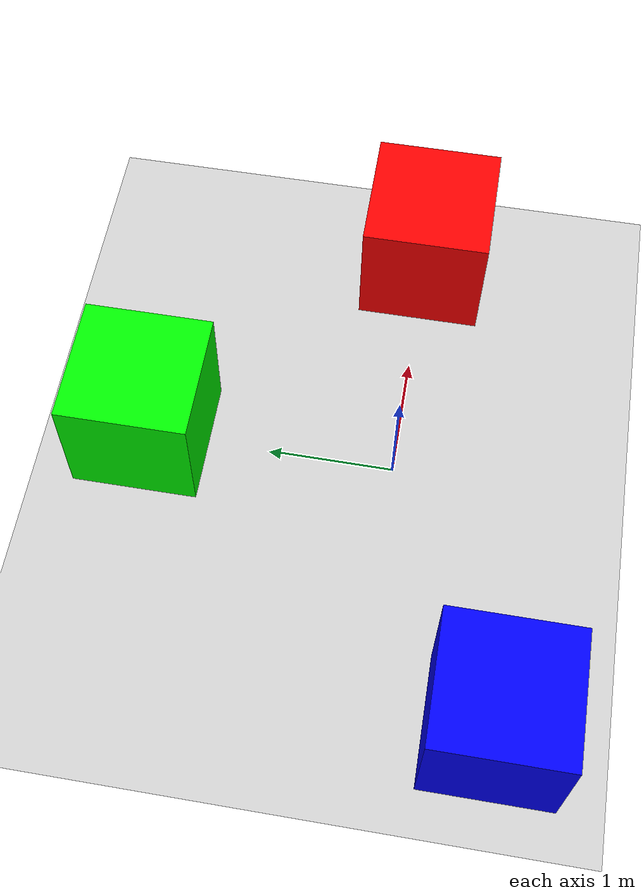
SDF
<?xml version="1.0"?>
<sdf version="1.9">
  <world name="empty_world">

    <plugin
      filename="gz-sim-physics-system"
      name="gz::sim::systems::Physics"/>

    <plugin
      filename="gz-sim-user-commands-system"
      name="gz::sim::systems::UserCommands"/>

    <plugin
      filename="gz-sim-scene-broadcaster-system"
      name="gz::sim::systems::SceneBroadcaster"/>

    <plugin
      filename="gz-sim-sensors-system"
      name="gz::sim::systems::Sensors">
      <render_engine>ogre2</render_engine>
    </plugin>

    <gravity>0 0 -9.8</gravity>

    <physics name="physics" type="ignored">
      <max_step_size>0.001</max_step_size>
      <real_time_factor>1.0</real_time_factor>
    </physics>

    <scene>
      <ambient>0.4 0.4 0.4 1</ambient>
      <background>0.7 0.7 0.7 1</background>
    </scene>

    <light name="sun_light" type="directional">
      <cast_shadows>true</cast_shadows>
      <pose>0 0 10 0 0 0</pose>
      <diffuse>0.8 0.8 0.8 1</diffuse>
      <specular>0.2 0.2 0.2 1</specular>
      <attenuation>
        <range>1000</range>
        <constant>0.9</constant>
        <linear>0.01</linear>
        <quadratic>0.001</quadratic>
      </attenuation>
      <direction>-0.5 0.1 -0.9</direction>
    </light>

    <model name="ground_plane">
      <static>true</static>
      <link name="ground_link">
        <collision name="ground_collision">
          <geometry>
            <plane>
              <normal>0 0 1</normal>
              <size>100 100</size>
            </plane>
          </geometry>
        </collision>
        <visual name="ground_visual">
          <geometry>
            <plane>
              <normal>0 0 1</normal>
              <size>100 100</size>
            </plane>
          </geometry>
          <material>
            <ambient>0.8 0.8 0.8 1</ambient>
            <diffuse>0.8 0.8 0.8 1</diffuse>
            <specular>0.2 0.2 0.2 1</specular>
          </material>
        </visual>
      </link>
    </model>

    <model name="box_1">
      <static>true</static>
      <pose>2 0 0.5 0 0 0</pose>
      <link name="link">
        <collision name="collision">
          <geometry>
            <box>
              <size>1 1 1</size>
            </box>
          </geometry>
        </collision>
        <visual name="visual">
          <geometry>
            <box>
              <size>1 1 1</size>
            </box>
          </geometry>
          <material>
            <ambient>1 0 0 1</ambient>
            <diffuse>1 0 0 1</diffuse>
          </material>
        </visual>
      </link>
    </model>

    <model name="box_2">
      <static>true</static>
      <pose>0 2 0.5 0 0 0</pose>
      <link name="link">
        <collision name="collision">
          <geometry>
            <box>
              <size>1 1 1</size>
            </box>
          </geometry>
        </collision>
        <visual name="visual">
          <geometry>
            <box>
              <size>1 1 1</size>
            </box>
          </geometry>
          <material>
            <ambient>0 1 0 1</ambient>
            <diffuse>0 1 0 1</diffuse>
          </material>
        </visual>
      </link>
    </model>

    <model name="box_3">
      <static>true</static>
      <pose>-2 -1 0.5 0 0 0</pose>
      <link name="link">
        <collision name="collision">
          <geometry>
            <box>
              <size>1 1 1</size>
            </box>
          </geometry>
        </collision>
        <visual name="visual">
          <geometry>
            <box>
              <size>1 1 1</size>
            </box>
          </geometry>
          <material>
            <ambient>0 0 1 1</ambient>
            <diffuse>0 0 1 1</diffuse>
          </material>
        </visual>
      </link>
    </model>

  </world>
</sdf>
